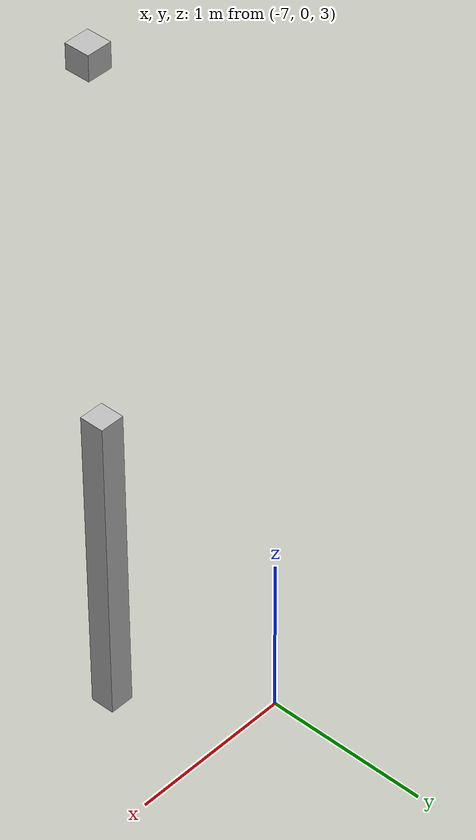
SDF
<sdf version="1.7">
 <world name="default">
  <model name="orthogonal_747_2.000.15_TS">
   <static>1</static>
   <link name="z_link_3_2_0">
    <inertial>
     <mass>1</mass>
     <inertia>
      <ixx>0.166667</ixx>
      <ixy>0</ixy>
      <ixz>0</ixz>
      <iyy>0.166667</iyy>
      <iyz>0</iyz>
      <izz>0.166667</izz>
     </inertia>
    </inertial>
    <pose>0 4.3 6.45 0 -0 0</pose>
    <visual name="visual_0">
     <laser_retro>2969</laser_retro>
     <geometry><box><size>0.15 1e-06 2</size></box></geometry>
     <material>
      <script><name>Gazebo/Grey</name><uri>file://media/materials/scripts/gazebo.material</uri></script>
      <shader type="pixel"><normal_map>__default__</normal_map></shader>
      <ambient>0.678 0.498 0.659 1</ambient>
      <diffuse>0.7 0.7 0.7 1</diffuse>
      <specular>0.01 0.01 0.01 1</specular>
      <emissive>0 0 0 1</emissive>
     </material>
     <pose>0 -0.075 0 0 -0 0</pose>
     <transparency>1</transparency>
    </visual>
    <visual name="visual_1">
     <laser_retro>2970</laser_retro>
     <geometry><box><size>0.15 1e-06 2</size></box></geometry>
     <material>
      <script><name>Gazebo/Grey</name><uri>file://media/materials/scripts/gazebo.material</uri></script>
      <shader type="pixel"><normal_map>__default__</normal_map></shader>
      <ambient>0.447 0.624 0.812 1</ambient>
      <diffuse>0.7 0.7 0.7 1</diffuse>
      <specular>0.01 0.01 0.01 1</specular>
      <emissive>0 0 0 1</emissive>
     </material>
     <pose>0 0.075 0 0 -0 0</pose>
     <transparency>1</transparency>
    </visual>
    <visual name="visual_2">
     <laser_retro>2971</laser_retro>
     <geometry><box><size>0.15 0.15 1e-06</size></box></geometry>
     <material>
      <script><name>Gazebo/Grey</name><uri>file://media/materials/scripts/gazebo.material</uri></script>
      <shader type="pixel"><normal_map>__default__</normal_map></shader>
      <ambient>0.988 0.686 0.243 1</ambient>
      <diffuse>0.7 0.7 0.7 1</diffuse>
      <specular>0.01 0.01 0.01 1</specular>
      <emissive>0 0 0 1</emissive>
     </material>
     <pose>0 0 -1 0 -0 0</pose>
     <transparency>1</transparency>
    </visual>
    <visual name="visual_3">
     <laser_retro>2972</laser_retro>
     <geometry><box><size>1e-06 0.15 2</size></box></geometry>
     <material>
      <script><name>Gazebo/Grey</name><uri>file://media/materials/scripts/gazebo.material</uri></script>
      <shader type="pixel"><normal_map>__default__</normal_map></shader>
      <ambient>0.988 0.914 0.31 1</ambient>
      <diffuse>0.7 0.7 0.7 1</diffuse>
      <specular>0.01 0.01 0.01 1</specular>
      <emissive>0 0 0 1</emissive>
     </material>
     <pose>0.075 0 0 0 -0 0</pose>
     <transparency>1</transparency>
    </visual>
    <visual name="visual_4">
     <laser_retro>2973</laser_retro>
     <geometry><box><size>0.15 0.15 1e-06</size></box></geometry>
     <material>
      <script><name>Gazebo/Grey</name><uri>file://media/materials/scripts/gazebo.material</uri></script>
      <shader type="pixel"><normal_map>__default__</normal_map></shader>
      <ambient>0.937 0.161 0.161 1</ambient>
      <diffuse>0.7 0.7 0.7 1</diffuse>
      <specular>0.01 0.01 0.01 1</specular>
      <emissive>0 0 0 1</emissive>
     </material>
     <pose>0 0 1 0 -0 0</pose>
     <transparency>1</transparency>
    </visual>
    <visual name="visual_5">
     <laser_retro>2974</laser_retro>
     <geometry><box><size>1e-06 0.15 2</size></box></geometry>
     <material>
      <script><name>Gazebo/Grey</name><uri>file://media/materials/scripts/gazebo.material</uri></script>
      <shader type="pixel"><normal_map>__default__</normal_map></shader>
      <ambient>0.541 0.886 0.204 1</ambient>
      <diffuse>0.7 0.7 0.7 1</diffuse>
      <specular>0.01 0.01 0.01 1</specular>
      <emissive>0 0 0 1</emissive>
     </material>
     <pose>-0.075 0 0 0 -0 0</pose>
     <transparency>1</transparency>
    </visual>
    <visual name="visual_texture">
     <geometry><box><size>0.149985 0.149985 1.9998</size></box></geometry>
     <material>
      <script>
       <uri>model://BASE_MODELS/simple_block_v2_textured/materials/scripts</uri>
       <uri>model://BASE_MODELS/simple_block_v2_textured/materials/textures</uri>
       <name>metal</name>
      </script>
     </material>
     <laser_retro>2975</laser_retro>
    </visual>
    <collision name="collision">
     <geometry><box><size>0.15 0.15 2</size></box></geometry>
     <surface>
      <friction>
       <ode><mu>1</mu><mu2>1</mu2><fdir1>0 0 0</fdir1><slip1>0</slip1><slip2>0</slip2></ode>
       <torsional>
        <coefficient>1</coefficient>
        <patch_radius>0</patch_radius>
        <surface_radius>0</surface_radius>
        <use_patch_radius>1</use_patch_radius>
        <ode><slip>0</slip></ode>
       </torsional>
      </friction>
      <bounce><restitution_coefficient>0</restitution_coefficient><threshold>1e+06</threshold></bounce>
      <contact>
       <collide_without_contact>0</collide_without_contact>
       <collide_without_contact_bitmask>1</collide_without_contact_bitmask>
       <collide_bitmask>1</collide_bitmask>
       <ode>
        <soft_cfm>0</soft_cfm>
        <soft_erp>0.2</soft_erp>
        <kp>1e+13</kp>
        <kd>1</kd>
        <max_vel>0.01</max_vel>
        <min_depth>0</min_depth>
       </ode>
       <bullet>
        <split_impulse>1</split_impulse>
        <split_impulse_penetration_threshold>-0.01</split_impulse_penetration_threshold>
        <soft_cfm>0</soft_cfm>
        <soft_erp>0.2</soft_erp>
        <kp>1e+13</kp>
        <kd>1</kd>
       </bullet>
      </contact>
     </surface>
    </collision>
   </link>
   <link name="u_link_4_2_0">
    <inertial>
     <mass>1</mass>
     <inertia>
      <ixx>0.166667</ixx>
      <ixy>0</ixy>
      <ixz>0</ixz>
      <iyy>0.166667</iyy>
      <iyz>0</iyz>
      <izz>0.166667</izz>
     </inertia>
    </inertial>
    <pose>0 4.3 9.675 0 -0 0</pose>
    <visual name="visual_0">
     <laser_retro>3865</laser_retro>
     <geometry><box><size>0.15 1e-06 0.15</size></box></geometry>
     <material>
      <script><name>Gazebo/Grey</name><uri>file://media/materials/scripts/gazebo.material</uri></script>
      <shader type="pixel"><normal_map>__default__</normal_map></shader>
      <ambient>0.678 0.498 0.659 1</ambient>
      <diffuse>0.7 0.7 0.7 1</diffuse>
      <specular>0.01 0.01 0.01 1</specular>
      <emissive>0 0 0 1</emissive>
     </material>
     <pose>0 -0.075 0 0 -0 0</pose>
     <transparency>1</transparency>
    </visual>
    <visual name="visual_1">
     <laser_retro>3866</laser_retro>
     <geometry><box><size>0.15 1e-06 0.15</size></box></geometry>
     <material>
      <script><name>Gazebo/Grey</name><uri>file://media/materials/scripts/gazebo.material</uri></script>
      <shader type="pixel"><normal_map>__default__</normal_map></shader>
      <ambient>0.447 0.624 0.812 1</ambient>
      <diffuse>0.7 0.7 0.7 1</diffuse>
      <specular>0.01 0.01 0.01 1</specular>
      <emissive>0 0 0 1</emissive>
     </material>
     <pose>0 0.075 0 0 -0 0</pose>
     <transparency>1</transparency>
    </visual>
    <visual name="visual_2">
     <laser_retro>3867</laser_retro>
     <geometry><box><size>0.15 0.15 1e-06</size></box></geometry>
     <material>
      <script><name>Gazebo/Grey</name><uri>file://media/materials/scripts/gazebo.material</uri></script>
      <shader type="pixel"><normal_map>__default__</normal_map></shader>
      <ambient>0.988 0.686 0.243 1</ambient>
      <diffuse>0.7 0.7 0.7 1</diffuse>
      <specular>0.01 0.01 0.01 1</specular>
      <emissive>0 0 0 1</emissive>
     </material>
     <pose>0 0 -0.075 0 -0 0</pose>
     <transparency>1</transparency>
    </visual>
    <visual name="visual_3">
     <laser_retro>3868</laser_retro>
     <geometry><box><size>1e-06 0.15 0.15</size></box></geometry>
     <material>
      <script><name>Gazebo/Grey</name><uri>file://media/materials/scripts/gazebo.material</uri></script>
      <shader type="pixel"><normal_map>__default__</normal_map></shader>
      <ambient>0.988 0.914 0.31 1</ambient>
      <diffuse>0.7 0.7 0.7 1</diffuse>
      <specular>0.01 0.01 0.01 1</specular>
      <emissive>0 0 0 1</emissive>
     </material>
     <pose>0.075 0 0 0 -0 0</pose>
     <transparency>1</transparency>
    </visual>
    <visual name="visual_4">
     <laser_retro>3869</laser_retro>
     <geometry><box><size>0.15 0.15 1e-06</size></box></geometry>
     <material>
      <script><name>Gazebo/Grey</name><uri>file://media/materials/scripts/gazebo.material</uri></script>
      <shader type="pixel"><normal_map>__default__</normal_map></shader>
      <ambient>0.937 0.161 0.161 1</ambient>
      <diffuse>0.7 0.7 0.7 1</diffuse>
      <specular>0.01 0.01 0.01 1</specular>
      <emissive>0 0 0 1</emissive>
     </material>
     <pose>0 0 0.075 0 -0 0</pose>
     <transparency>1</transparency>
    </visual>
    <visual name="visual_5">
     <laser_retro>3870</laser_retro>
     <geometry><box><size>1e-06 0.15 0.15</size></box></geometry>
     <material>
      <script><name>Gazebo/Grey</name><uri>file://media/materials/scripts/gazebo.material</uri></script>
      <shader type="pixel"><normal_map>__default__</normal_map></shader>
      <ambient>0.541 0.886 0.204 1</ambient>
      <diffuse>0.7 0.7 0.7 1</diffuse>
      <specular>0.01 0.01 0.01 1</specular>
      <emissive>0 0 0 1</emissive>
     </material>
     <pose>-0.075 0 0 0 -0 0</pose>
     <transparency>1</transparency>
    </visual>
    <visual name="visual_texture">
     <geometry><box><size>0.149985 0.149985 0.149985</size></box></geometry>
     <material>
      <script>
       <uri>model://BASE_MODELS/simple_block_v2_textured/materials/scripts</uri>
       <uri>model://BASE_MODELS/simple_block_v2_textured/materials/textures</uri>
       <name>metal</name>
      </script>
     </material>
     <laser_retro>3871</laser_retro>
    </visual>
    <collision name="collision">
     <geometry><box><size>0.15 0.15 0.15</size></box></geometry>
     <surface>
      <friction>
       <ode><mu>1</mu><mu2>1</mu2><fdir1>0 0 0</fdir1><slip1>0</slip1><slip2>0</slip2></ode>
       <torsional>
        <coefficient>1</coefficient>
        <patch_radius>0</patch_radius>
        <surface_radius>0</surface_radius>
        <use_patch_radius>1</use_patch_radius>
        <ode><slip>0</slip></ode>
       </torsional>
      </friction>
      <bounce><restitution_coefficient>0</restitution_coefficient><threshold>1e+06</threshold></bounce>
      <contact>
       <collide_without_contact>0</collide_without_contact>
       <collide_without_contact_bitmask>1</collide_without_contact_bitmask>
       <collide_bitmask>1</collide_bitmask>
       <ode>
        <soft_cfm>0</soft_cfm>
        <soft_erp>0.2</soft_erp>
        <kp>1e+13</kp>
        <kd>1</kd>
        <max_vel>0.01</max_vel>
        <min_depth>0</min_depth>
       </ode>
       <bullet>
        <split_impulse>1</split_impulse>
        <split_impulse_penetration_threshold>-0.01</split_impulse_penetration_threshold>
        <soft_cfm>0</soft_cfm>
        <soft_erp>0.2</soft_erp>
        <kp>1e+13</kp>
        <kd>1</kd>
       </bullet>
      </contact>
     </surface>
    </collision>
   </link>
   <pose>-6.47624 -5 -2.5 0 -0 0</pose>
  </model>
 </world>
</sdf>
